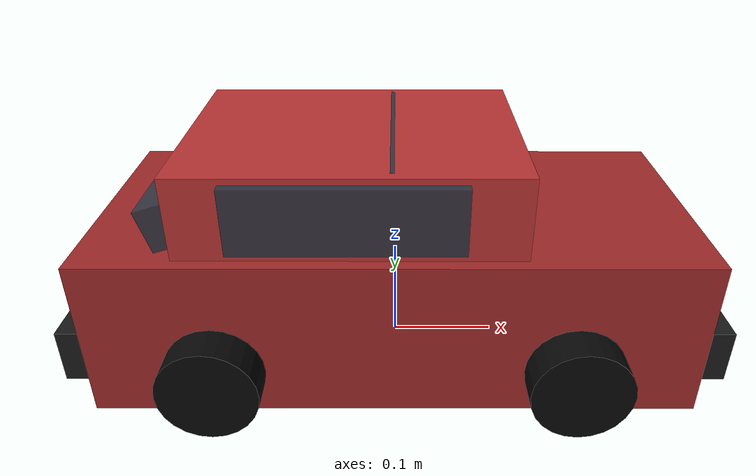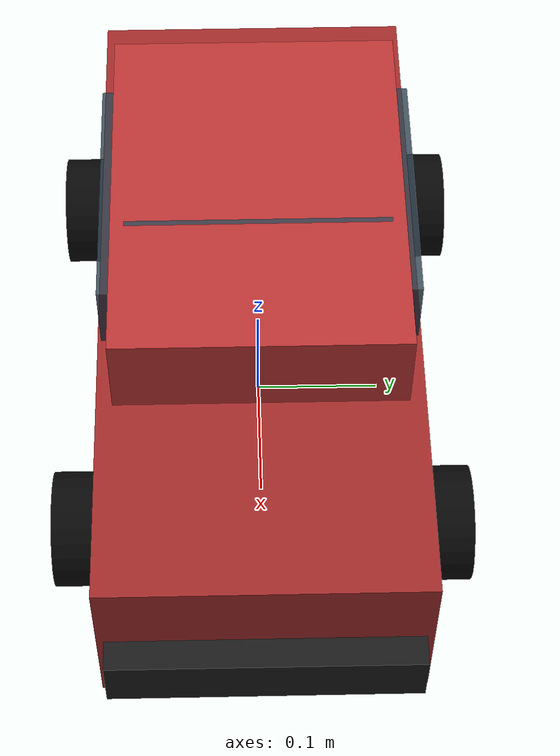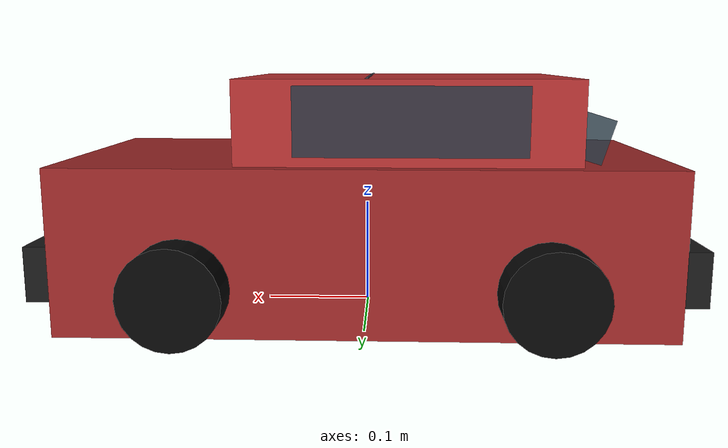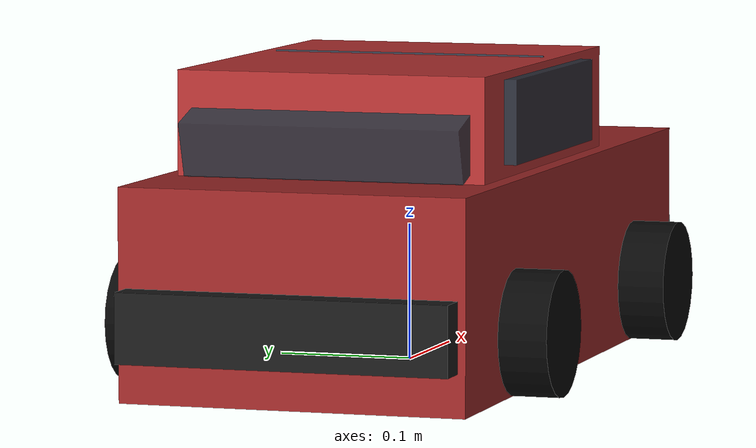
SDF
<sdf version="1.9">
  <model name="red_car">
    <static>true</static>

    <include>
      <uri>model://base_car_variant</uri>
      <name>base_car_core</name>
      <pose>0 0 0 0 0 0</pose>
    </include>

    <link name="red_tint_link">
      <visual name="body_tint_visual">
        <pose>0 0 0.075 0 0 0</pose>
        <geometry>
          <box>
            <size>0.551 0.251 0.151</size>
          </box>
        </geometry>
        <material>
          <ambient>0.62 0.16 0.16 1</ambient>
          <diffuse>0.62 0.16 0.16 1</diffuse>
          <specular>0.08 0.08 0.08 1</specular>
        </material>
      </visual>

      <visual name="top_tint_visual">
        <pose>-0.0375 0 0.175 0 0 0</pose>
        <geometry>
          <box>
            <size>0.301 0.226 0.101</size>
          </box>
        </geometry>
        <material>
          <ambient>0.72 0.2 0.2 1</ambient>
          <diffuse>0.72 0.2 0.2 1</diffuse>
          <specular>0.08 0.08 0.08 1</specular>
        </material>
      </visual>
    </link>
  </model>
</sdf>

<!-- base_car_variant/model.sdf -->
<sdf version="1.9">
  <model name="base_car_variant">
    <static>true</static>

    <include>
      <uri>model://full/base_car</uri>
      <name>base_car_impl_full</name>
      <pose>0 0 0 0 0 0</pose>
    </include>

    <!-- LITE mode -->
  </model>
</sdf>

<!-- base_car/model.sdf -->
<sdf version="1.9">
  <model name="base_car">
    <static>true</static>
    <link name="car_link">
      <collision name="body_collision">
        <pose>0 0 0.075 0 0 0</pose>
        <geometry>
          <box>
            <size>0.55 0.25 0.15</size>
          </box>
        </geometry>
      </collision>
      <visual name="body_visual">
        <pose>0 0 0.075 0 0 0</pose>
        <geometry>
          <box>
            <size>0.55 0.25 0.15</size>
          </box>
        </geometry>
        <material>
          <ambient>0.08 0.25 0.62 1</ambient>
          <diffuse>0.08 0.25 0.62 1</diffuse>
          <specular>0.08 0.08 0.08 1</specular>
        </material>
      </visual>

      <visual name="top_visual">
        <pose>-0.0375 0 0.175 0 0 0</pose>
        <geometry>
          <box>
            <size>0.3 0.225 0.1</size>
          </box>
        </geometry>
        <material>
          <ambient>0.12 0.30 0.70 1</ambient>
          <diffuse>0.12 0.30 0.70 1</diffuse>
          <specular>0.08 0.08 0.08 1</specular>
        </material>
      </visual>

      <visual name="front_windshield_visual">
        <pose>0.045 0 0.185 0 0.35 0</pose>
        <geometry>
          <box>
            <size>0.12 0.205 0.045</size>
          </box>
        </geometry>
        <material>
          <ambient>0.2 0.28 0.34 0.85</ambient>
          <diffuse>0.2 0.28 0.34 0.85</diffuse>
          <specular>0.2 0.2 0.2 1</specular>
        </material>
      </visual>

      <visual name="rear_window_visual">
        <pose>-0.165 0 0.185 0 -0.3 0</pose>
        <geometry>
          <box>
            <size>0.095 0.205 0.04</size>
          </box>
        </geometry>
        <material>
          <ambient>0.18 0.25 0.3 0.85</ambient>
          <diffuse>0.18 0.25 0.3 0.85</diffuse>
          <specular>0.2 0.2 0.2 1</specular>
        </material>
      </visual>

      <visual name="left_window_visual">
        <pose>-0.04 0.117 0.19 0 0 0</pose>
        <geometry>
          <box>
            <size>0.2 0.01 0.06</size>
          </box>
        </geometry>
        <material>
          <ambient>0.18 0.25 0.3 0.85</ambient>
          <diffuse>0.18 0.25 0.3 0.85</diffuse>
          <specular>0.2 0.2 0.2 1</specular>
        </material>
      </visual>

      <visual name="right_window_visual">
        <pose>-0.04 -0.117 0.19 0 0 0</pose>
        <geometry>
          <box>
            <size>0.2 0.01 0.06</size>
          </box>
        </geometry>
        <material>
          <ambient>0.18 0.25 0.3 0.85</ambient>
          <diffuse>0.18 0.25 0.3 0.85</diffuse>
          <specular>0.2 0.2 0.2 1</specular>
        </material>
      </visual>

      <visual name="front_bumper_visual">
        <pose>0.286 0 0.055 0 0 0</pose>
        <geometry>
          <box>
            <size>0.025 0.24 0.05</size>
          </box>
        </geometry>
        <material>
          <ambient>0.1 0.1 0.1 1</ambient>
          <diffuse>0.1 0.1 0.1 1</diffuse>
          <specular>0.15 0.15 0.15 1</specular>
        </material>
      </visual>

      <visual name="rear_bumper_visual">
        <pose>-0.286 0 0.055 0 0 0</pose>
        <geometry>
          <box>
            <size>0.025 0.24 0.05</size>
          </box>
        </geometry>
        <material>
          <ambient>0.1 0.1 0.1 1</ambient>
          <diffuse>0.1 0.1 0.1 1</diffuse>
          <specular>0.15 0.15 0.15 1</specular>
        </material>
      </visual>

      <visual name="front_left_tire_visual">
        <pose>0.16 0.145 0.045 1.5708 0 0</pose>
        <geometry>
          <cylinder>
            <radius>0.045</radius>
            <length>0.035</length>
          </cylinder>
        </geometry>
        <material>
          <ambient>0.03 0.03 0.03 1</ambient>
          <diffuse>0.03 0.03 0.03 1</diffuse>
          <specular>0.02 0.02 0.02 1</specular>
        </material>
      </visual>

      <visual name="front_right_tire_visual">
        <pose>0.16 -0.145 0.045 1.5708 0 0</pose>
        <geometry>
          <cylinder>
            <radius>0.045</radius>
            <length>0.035</length>
          </cylinder>
        </geometry>
        <material>
          <ambient>0.03 0.03 0.03 1</ambient>
          <diffuse>0.03 0.03 0.03 1</diffuse>
          <specular>0.02 0.02 0.02 1</specular>
        </material>
      </visual>

      <visual name="rear_left_tire_visual">
        <pose>-0.16 0.145 0.045 1.5708 0 0</pose>
        <geometry>
          <cylinder>
            <radius>0.045</radius>
            <length>0.035</length>
          </cylinder>
        </geometry>
        <material>
          <ambient>0.03 0.03 0.03 1</ambient>
          <diffuse>0.03 0.03 0.03 1</diffuse>
          <specular>0.02 0.02 0.02 1</specular>
        </material>
      </visual>

      <visual name="rear_right_tire_visual">
        <pose>-0.16 -0.145 0.045 1.5708 0 0</pose>
        <geometry>
          <cylinder>
            <radius>0.045</radius>
            <length>0.035</length>
          </cylinder>
        </geometry>
        <material>
          <ambient>0.03 0.03 0.03 1</ambient>
          <diffuse>0.03 0.03 0.03 1</diffuse>
          <specular>0.02 0.02 0.02 1</specular>
        </material>
      </visual>
    </link>
  </model>
</sdf>
